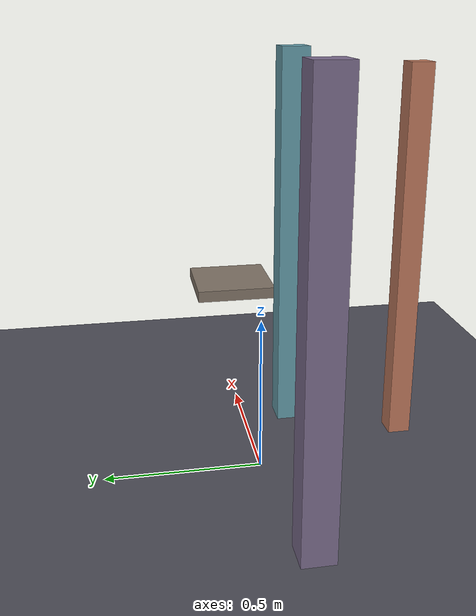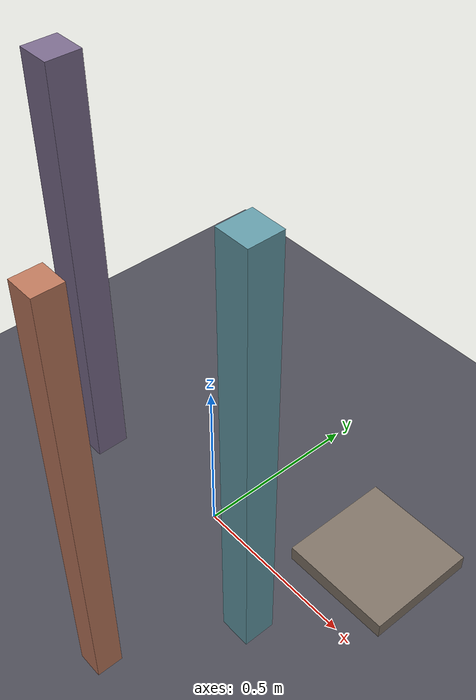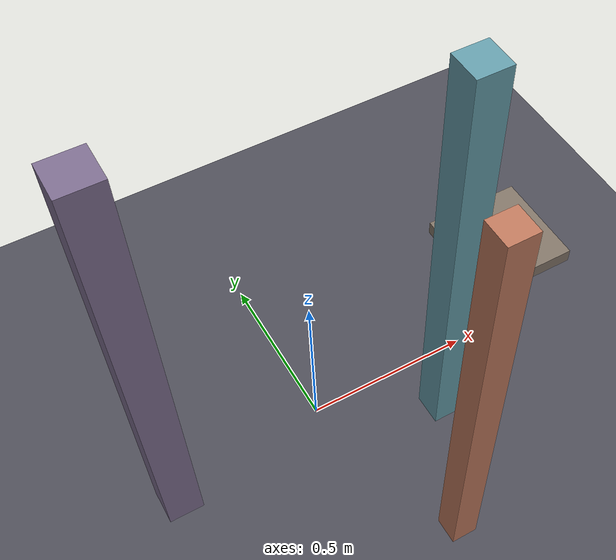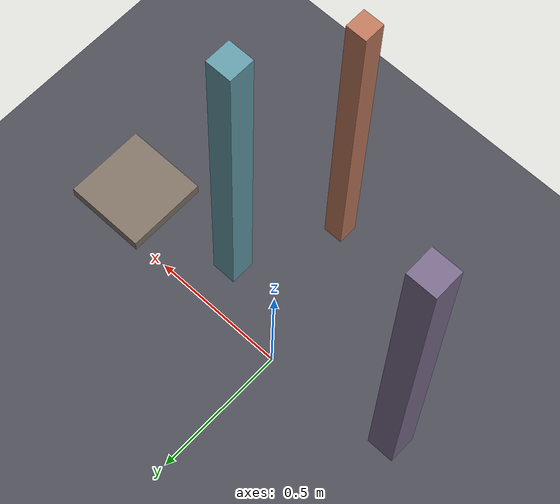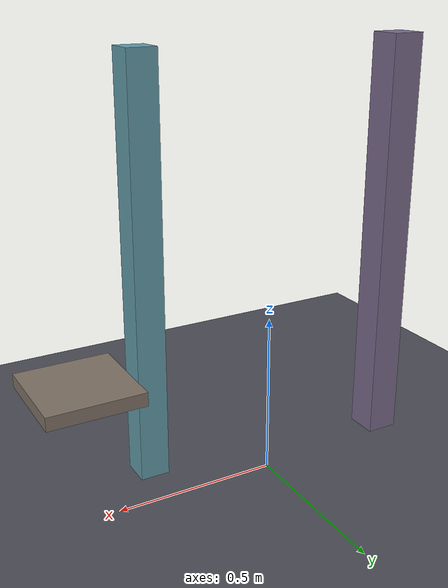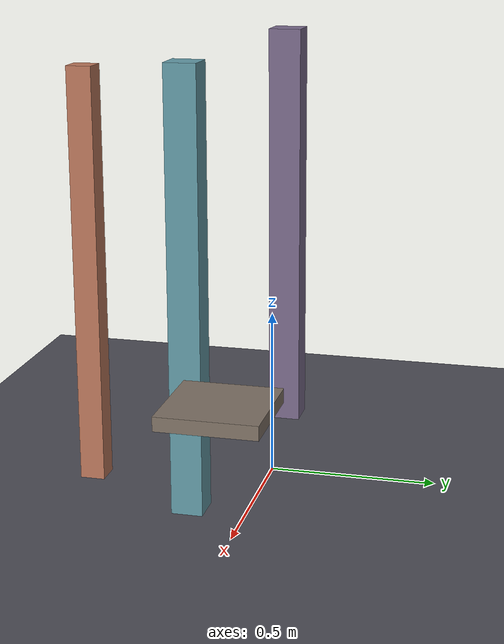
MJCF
<mujoco model="pillar_avoid_9">
  <compiler angle="radian" autolimits="true" boundmass="0" balanceinertia="true"/>
  <option impratio="10" gravity="0 0 -9.8" integrator="implicitfast" cone="elliptic" jacobian="sparse" noslip_iterations="4">
    <flag multiccd="enable" contact="enable" warmstart="enable"/>
  </option>
  <size njmax="6000" nconmax="6000"/>
  <visual><global offwidth="1280" offheight="720"/><map znear="0.001"/>
    <headlight ambient="0.45 0.45 0.45" diffuse="0.6 0.6 0.6"/></visual>
  <worldbody>
    <light pos="0.4 0.4 3" dir="0 0 -1" diffuse="0.7 0.7 0.7"/>
    <!-- Obstacle-avoidance variant 9: 3 tall PHYSICAL pillars; placements blocking >10%
         of exo-camera sightlines to the arm excluded (training view preserved). -->
    <body name="pillars" pos="0 0 0"><geom name="floor" type="plane" size="5 5 0.1" pos="0 0 0" rgba="0.30 0.30 0.34 1" contype="8" conaffinity="15"/><geom name="obj_pad" type="box" pos="0.60 0 0.42" size="0.14 0.14 0.02" rgba="0.5 0.45 0.4 1" contype="8" conaffinity="15"/><geom name="pillar_1" type="box" pos="0.333 -0.163 0.646" size="0.046 0.046 0.646" contype="8" conaffinity="15" rgba="0.39 0.61 0.66 1"/><geom name="pillar_4" type="box" pos="-0.469 -0.060 0.653" size="0.051 0.051 0.653" contype="8" conaffinity="15" rgba="0.48 0.42 0.55 1"/><geom name="pillar_6" type="box" pos="0.161 -0.516 0.626" size="0.037 0.037 0.626" contype="8" conaffinity="15" rgba="0.74 0.47 0.36 1"/></body>
  </worldbody>
</mujoco>
